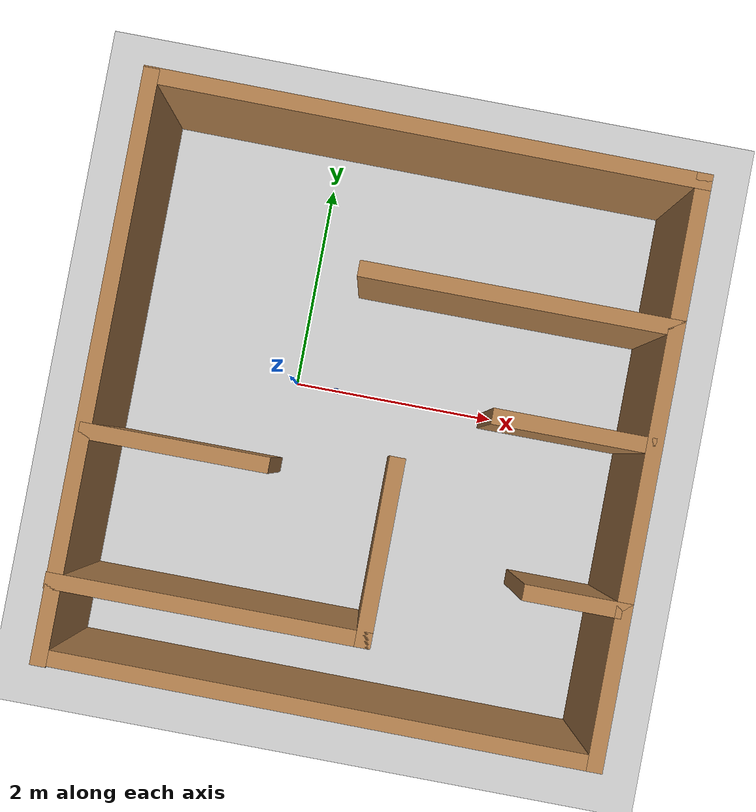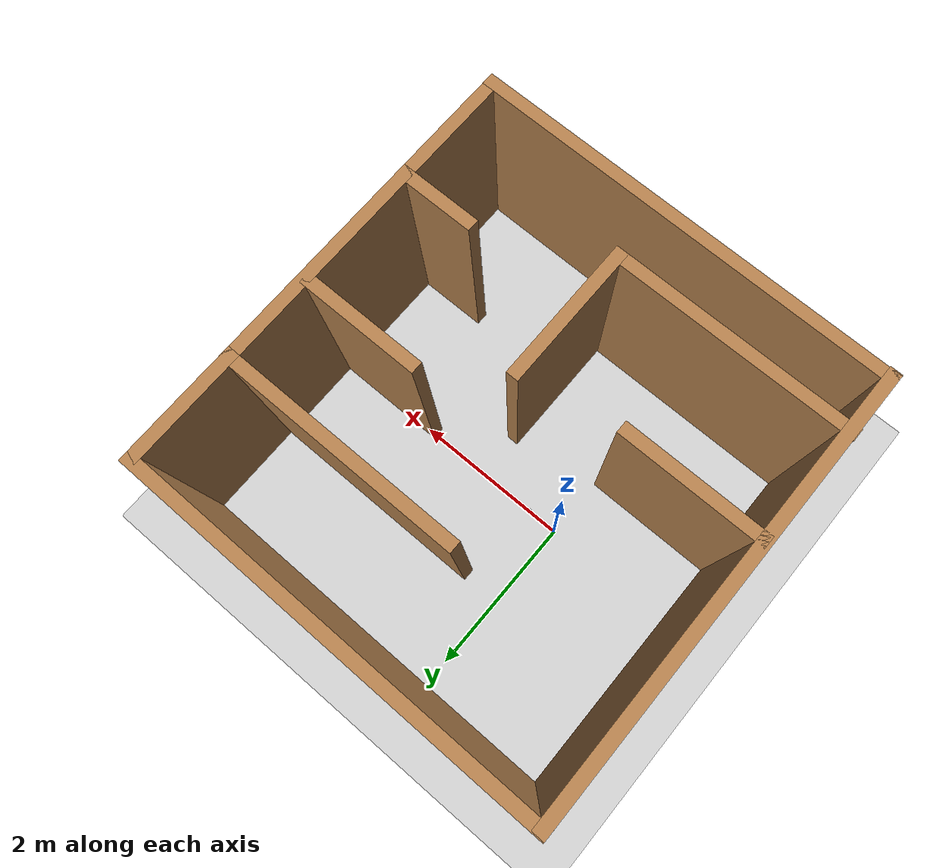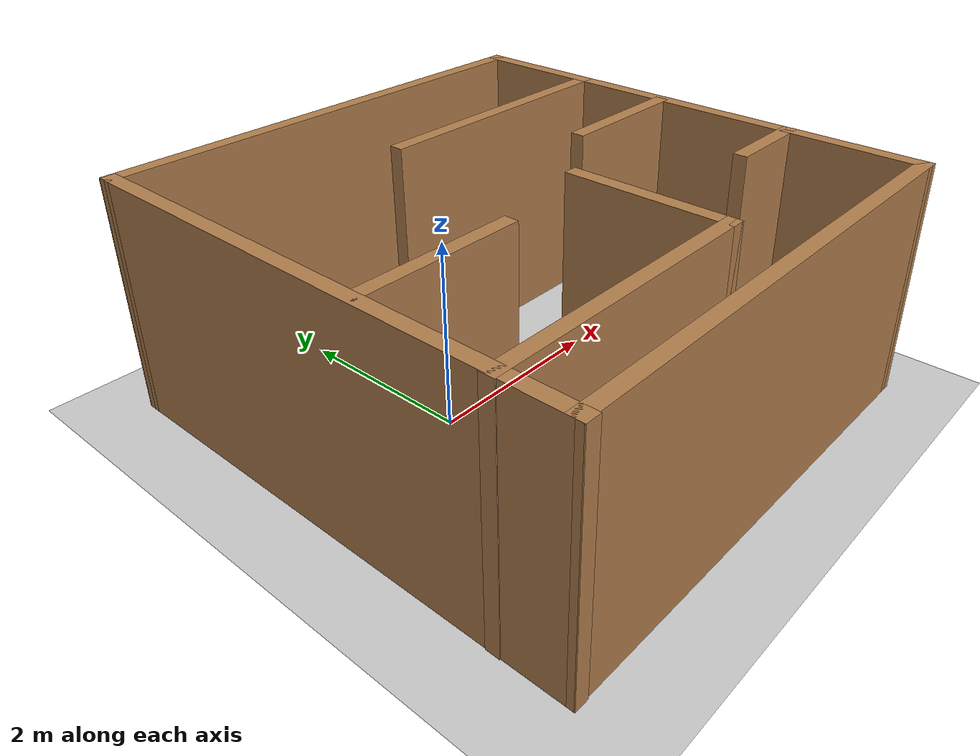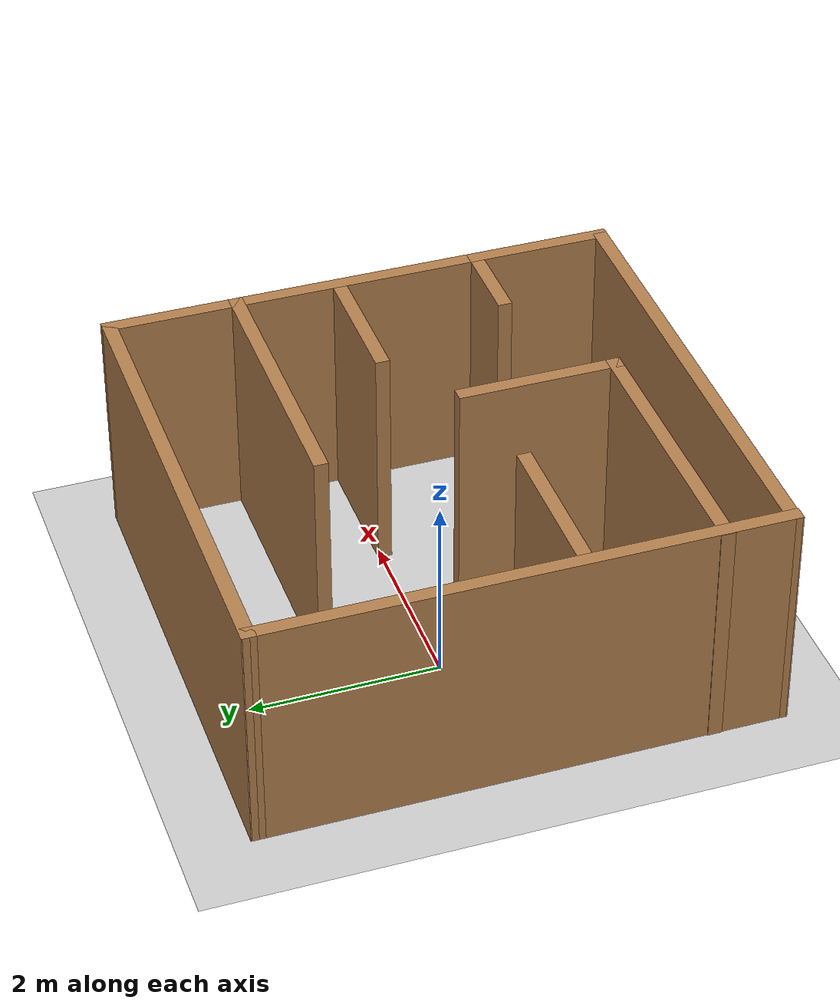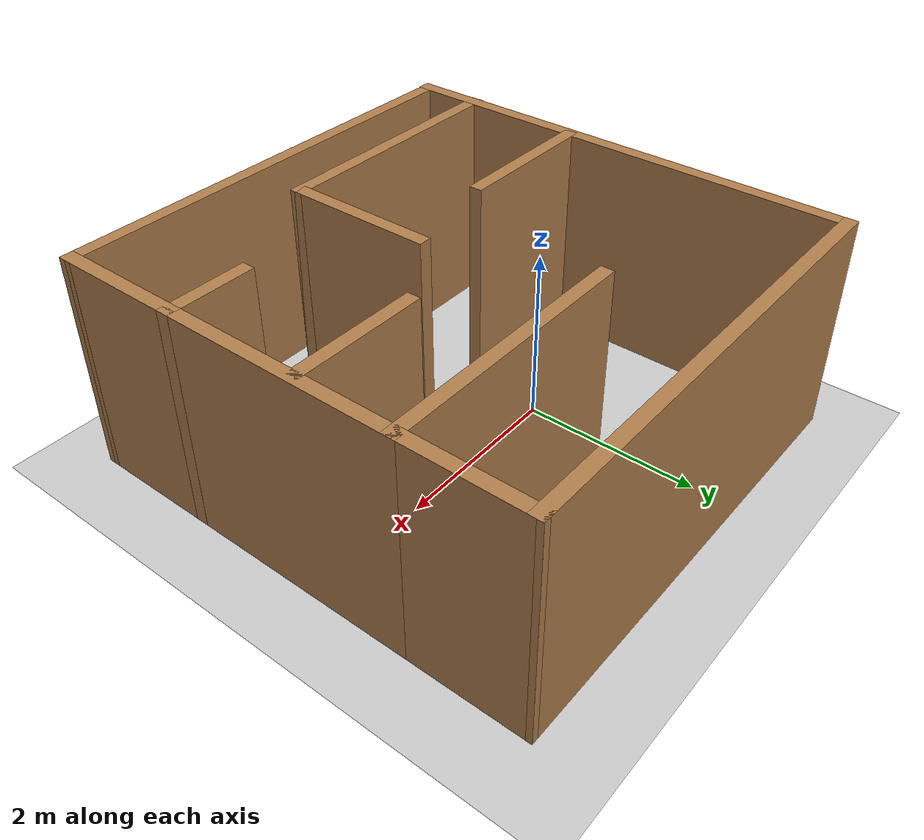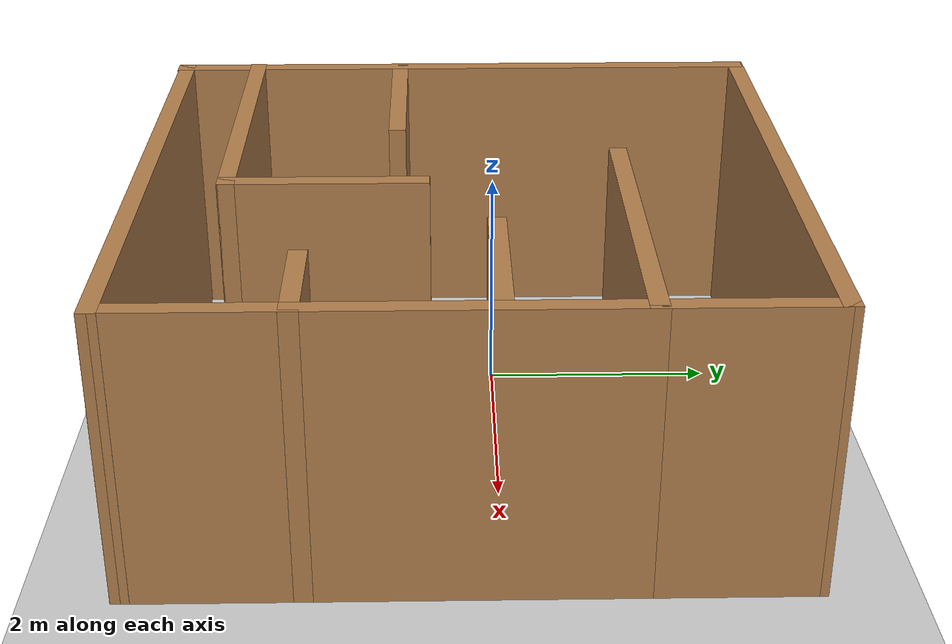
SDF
<?xml version='1.0'?>
<sdf version='1.7'>
  <world name='grasp_assignment_world'>

    <light name='sun' type='directional'>
      <cast_shadows>1</cast_shadows>
      <pose>0 0 10 0 -0 0</pose>
      <diffuse>0.8 0.8 0.8 1</diffuse>
      <specular>0.2 0.2 0.2 1</specular>
      <attenuation><range>1000</range><constant>0.9</constant><linear>0.01</linear><quadratic>0.001</quadratic></attenuation>
      <direction>-0.5 0.1 -0.9</direction>
    </light>

    <model name='ground_plane'>
      <static>1</static>
      <link name='link'>
        <collision name='collision'>
          <geometry><plane><normal>0 0 1</normal><size>100 100</size></plane></geometry>
          <surface><friction><ode><mu>100</mu><mu2>50</mu2></ode></friction></surface>
        </collision>
        <visual name='visual'>
          <cast_shadows>0</cast_shadows>
          <geometry><plane><normal>0 0 1</normal><size>100 100</size></plane></geometry>
          <material><script><uri>file://media/materials/scripts/gazebo.material</uri><name>Gazebo/Grey</name></script></material>
        </visual>
      </link>
    </model>

    <model name='target_cube'>
      <pose>0.40 0 0.03 0 0 0</pose>
      <link name='link'>
        <inertial>
          <mass>0.05</mass>
          <inertia><ixx>8.33e-5</ixx><ixy>0</ixy><ixz>0</ixz><iyy>8.33e-5</iyy><iyz>0</iyz><izz>8.33e-5</izz></inertia>
        </inertial>
        <collision name='collision'>
          <geometry><box><size>0.05 0.05 0.05</size></box></geometry>
          <surface>
            <friction><ode><mu>20.0</mu><mu2>20.0</mu2></ode></friction>
            <contact><ode><kp>10000.0</kp><kd>100.0</kd><min_depth>0.001</min_depth></ode></contact>
          </surface>
        </collision>
        <visual name='visual'>
          <geometry><box><size>0.05 0.05 0.05</size></box></geometry>
          <material><script><name>Gazebo/Blue</name><uri>file://media/materials/scripts/gazebo.material</uri></script></material>
        </visual>
      </link>
    </model>

    <model name='room_walls'>
      <static>1</static>
      <pose>0.822823 -0.256483 0 0 -0 0</pose>

      <link name='Wall_40'>
        <collision name='Wall_40_Collision'>
          <geometry><box><size>5.5 0.15 2.5</size></box></geometry>
          <pose>0 0 1.25 0 -0 0</pose>
        </collision>
        <visual name='Wall_40_Visual'>
          <pose>0 0 1.25 0 -0 0</pose>
          <geometry><box><size>5.5 0.15 2.5</size></box></geometry>
          <material><script><uri>file://media/materials/scripts/gazebo.material</uri><name>Gazebo/Wood</name></script></material>
        </visual>
        <pose>-2.54586 0 0 0 -0 1.5708</pose>
      </link>

      <link name='Wall_41'>
        <collision name='Wall_41_Collision'>
          <geometry><box><size>5.25 0.15 2.5</size></box></geometry>
          <pose>0 0 1.25 0 -0 0</pose>
        </collision>
        <visual name='Wall_41_Visual'>
          <pose>0 0 1.25 0 -0 0</pose>
          <geometry><box><size>5.25 0.15 2.5</size></box></geometry>
          <material><script><uri>file://media/materials/scripts/gazebo.material</uri><name>Gazebo/Wood</name></script></material>
        </visual>
        <pose>0.004141 2.675 0 0 -0 -0.00451</pose>
      </link>

      <link name='Wall_42'>
        <collision name='Wall_42_Collision'>
          <geometry><box><size>1.5 0.15 2.5</size></box></geometry>
          <pose>0 0 1.25 0 -0 0</pose>
        </collision>
        <visual name='Wall_42_Visual'>
          <pose>0 0 1.25 0 -0 0</pose>
          <geometry><box><size>1.5 0.15 2.5</size></box></geometry>
          <material><script><uri>file://media/materials/scripts/gazebo.material</uri><name>Gazebo/Wood</name></script></material>
        </visual>
        <pose>2.55414 1.9885 0 0 -0 -1.5708</pose>
      </link>

      <link name='Wall_43'>
        <collision name='Wall_43_Collision'>
          <geometry><box><size>3 0.15 2.5</size></box></geometry>
          <pose>0 0 1.25 0 -0 0</pose>
        </collision>
        <visual name='Wall_43_Visual'>
          <pose>0 0 1.25 0 -0 0</pose>
          <geometry><box><size>3 0.15 2.5</size></box></geometry>
          <material><script><uri>file://media/materials/scripts/gazebo.material</uri><name>Gazebo/Wood</name></script></material>
        </visual>
        <pose>1.12914 1.3135 0 0 -0 3.14159</pose>
      </link>

      <link name='Wall_45'>
        <collision name='Wall_45_Collision'>
          <geometry><box><size>2.75 0.15 2.5</size></box></geometry>
          <pose>0 0 1.25 0 -0 0</pose>
        </collision>
        <visual name='Wall_45_Visual'>
          <pose>0 0 1.25 0 -0 0</pose>
          <geometry><box><size>2.75 0.15 2.5</size></box></geometry>
          <material><script><uri>file://media/materials/scripts/gazebo.material</uri><name>Gazebo/Wood</name></script></material>
        </visual>
        <pose>2.55414 0.0135 0 0 -0 -1.5708</pose>
      </link>

      <link name='Wall_47'>
        <collision name='Wall_47_Collision'>
          <geometry><box><size>3 0.15 2.5</size></box></geometry>
          <pose>0 0 1.25 0 -0 0</pose>
        </collision>
        <visual name='Wall_47_Visual'>
          <pose>0 0 1.25 0 -0 0</pose>
          <geometry><box><size>3 0.15 2.5</size></box></geometry>
          <material><script><uri>file://media/materials/scripts/gazebo.material</uri><name>Gazebo/Wood</name></script></material>
        </visual>
        <pose>-1.12945 -1.97516 0 0 -0 0</pose>
      </link>

      <link name='Wall_49'>
        <collision name='Wall_49_Collision'>
          <geometry><box><size>1.75 0.15 2.5</size></box></geometry>
          <pose>0 0 1.25 0 -0 0</pose>
        </collision>
        <visual name='Wall_49_Visual'>
          <pose>0 0 1.25 0 -0 0</pose>
          <geometry><box><size>1.75 0.15 2.5</size></box></geometry>
          <material><script><uri>file://media/materials/scripts/gazebo.material</uri><name>Gazebo/Wood</name></script></material>
        </visual>
        <pose>0.295547 -1.17516 0 0 -0 1.5708</pose>
      </link>

      <link name='Wall_54'>
        <collision name='Wall_54_Collision'>
          <geometry><box><size>1.75 0.15 2.5</size></box></geometry>
          <pose>0 0 1.25 0 -0 0</pose>
        </collision>
        <visual name='Wall_54_Visual'>
          <pose>0 0 1.25 0 -0 0</pose>
          <geometry><box><size>1.75 0.15 2.5</size></box></geometry>
          <material><script><uri>file://media/materials/scripts/gazebo.material</uri><name>Gazebo/Wood</name></script></material>
        </visual>
        <pose>-1.70732 -0.589847 0 0 -0 0</pose>
      </link>

      <link name='Wall_56'>
        <collision name='Wall_56_Collision'>
          <geometry><box><size>1 0.15 2.5</size></box></geometry>
          <pose>0 0 1.25 0 -0 0</pose>
        </collision>
        <visual name='Wall_56_Visual'>
          <pose>0 0 1.25 0 -0 0</pose>
          <geometry><box><size>1 0.15 2.5</size></box></geometry>
          <material><script><uri>file://media/materials/scripts/gazebo.material</uri><name>Gazebo/Wood</name></script></material>
        </visual>
        <pose>2.12914 -1.2865 0 0 -0 3.14159</pose>
      </link>

      <link name='Wall_58'>
        <collision name='Wall_58_Collision'>
          <geometry><box><size>5.25 0.15 2.5</size></box></geometry>
          <pose>0 0 1.25 0 -0 0</pose>
        </collision>
        <visual name='Wall_58_Visual'>
          <pose>0 0 1.25 0 -0 0</pose>
          <geometry><box><size>5.25 0.15 2.5</size></box></geometry>
          <material><script><uri>file://media/materials/scripts/gazebo.material</uri><name>Gazebo/Wood</name></script></material>
        </visual>
        <pose>0.004141 -2.675 0 0 -0 -0.00451</pose>
      </link>

      <link name='Wall_59'>
        <collision name='Wall_59_Collision'>
          <geometry><box><size>1.55 0.15 2.5</size></box></geometry>
          <pose>0 0 1.25 0 -0 0</pose>
        </collision>
        <visual name='Wall_59_Visual'>
          <pose>0 0 1.25 0 -0 0</pose>
          <geometry><box><size>1.55 0.15 2.5</size></box></geometry>
          <material><script><uri>file://media/materials/scripts/gazebo.material</uri><name>Gazebo/Wood</name></script></material>
        </visual>
        <pose>2.55414 -1.9865 0 0 -0 1.5708</pose>
      </link>

      <link name='Wall_61'>
        <collision name='Wall_61_Collision'>
          <geometry><box><size>1.5 0.15 2.5</size></box></geometry>
          <pose>0 0 1.25 0 -0 0</pose>
        </collision>
        <visual name='Wall_61_Visual'>
          <pose>0 0 1.25 0 -0 0</pose>
          <geometry><box><size>1.5 0.15 2.5</size></box></geometry>
          <material><script><uri>file://media/materials/scripts/gazebo.material</uri><name>Gazebo/Wood</name></script></material>
        </visual>
        <pose>1.81306 0.223773 0 0 -0 3.14159</pose>
      </link>
    </model>

    <plugin name="gazebo_link_attacher" filename="libgazebo_link_attacher.so"/>
  </world>
</sdf>
